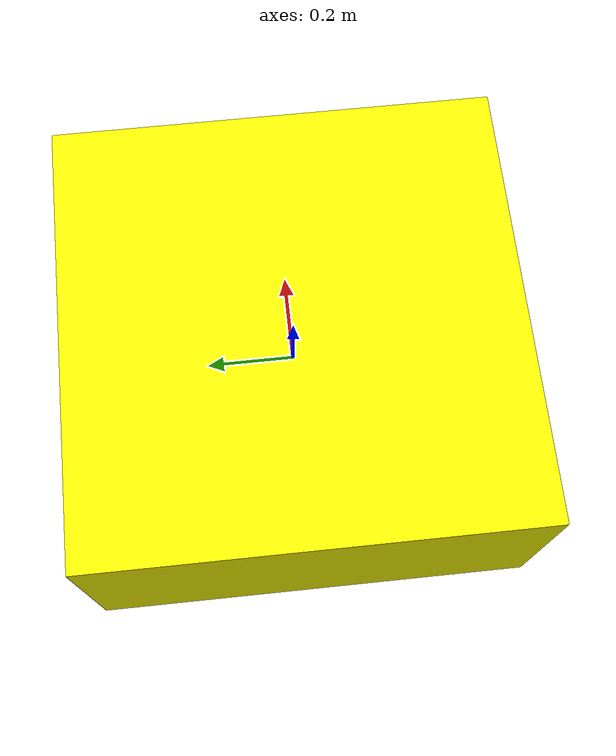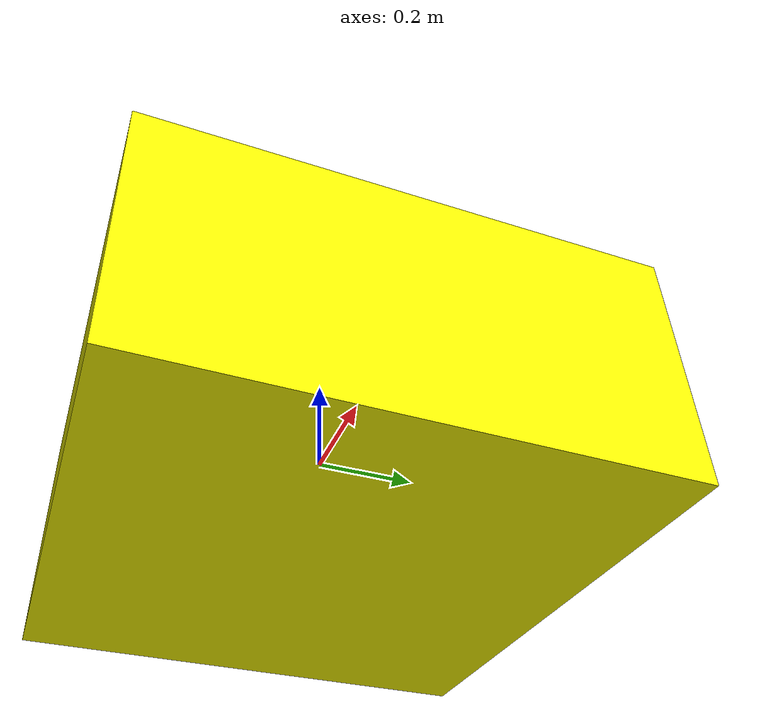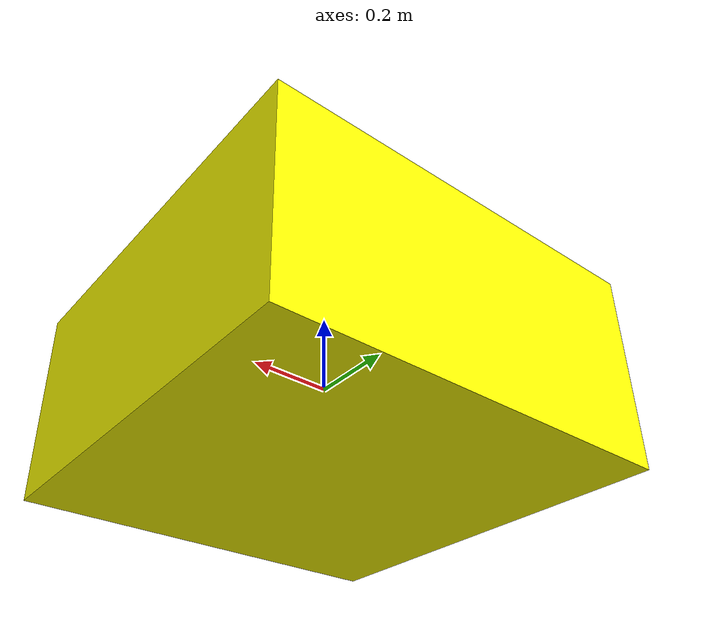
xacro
<?xml version="1.0"?>
<robot xmlns:xacro="http://ros.org/wiki/xacro"
       name="ur3e" >

  <!-- common stuff -->
  <xacro:include filename="$(find ur_e_description)/urdf/common.gazebo.xacro" />

  <!-- ur3e -->
  <xacro:include filename="$(find ur_e_description)/urdf/ur3e.urdf.xacro" />

  <!-- Include EGH Gripper -->
  <xacro:include filename="$(find ur_e_description)/urdf/egh_gripper.urdf.xacro" />

  <!-- arm -->
  <xacro:ur3e_robot prefix="" joint_limited="true"
    shoulder_pan_lower_limit="${-pi}" shoulder_pan_upper_limit="${pi}"
    shoulder_lift_lower_limit="${-pi}" shoulder_lift_upper_limit="${pi}"
    elbow_joint_lower_limit="${-pi}" elbow_joint_upper_limit="${pi}"
    wrist_1_lower_limit="${-pi}" wrist_1_upper_limit="${pi}"
    wrist_2_lower_limit="${-pi}" wrist_2_upper_limit="${pi}"
    wrist_3_lower_limit="${-pi}" wrist_3_upper_limit="${pi}"
  />

    <link name="world" >

    </link>

    <link name="ground_plane_box">
        <visual>
            <origin xyz="0 0 0" rpy="0 0 0"/>
            <geometry>
                <box size="1.0 1.0 0.5"/>
            </geometry>
            <material name="Red_green">
                <color rgba="1.0 1.0 0.0 1.0"/>
            </material>
        </visual>
        <collision>
            <origin xyz="0 0 0" rpy="0 0 0"/>
            <geometry>
                <box size="1.0 1.0 0.5"/>
            </geometry>
        </collision>
    </link>

    <joint name="ground_plane_box" type="fixed">
        <parent link="world" />
        <child link="ground_plane_box" />
        <origin xyz="0 0 0" rpy="0 0 0" />
    </joint>

    <gazebo reference="world">
      <material>Gazebo/Red</material>
      <turnGravityOff>false</turnGravityOff>
    </gazebo>

    <joint name="world_joint" type="fixed">
        <parent link="world" />
        <child link = "base_link" />
        <origin xyz="0.0 0.0 0.0" rpy="0.0 0.0 0.0" />
    </joint>

    <!-- Schunk EGH -->
    <xacro:egh_gripper prefix="egh_gripper" parent="tool0">
    </xacro:egh_gripper>

</robot>

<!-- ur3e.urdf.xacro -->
<robot xmlns:xacro="http://ros.org/wiki/xacro">

  <xacro:include filename="$(find ur_e_description)/urdf/ur.transmission.xacro" />
  <xacro:include filename="$(find ur_e_description)/urdf/ur.gazebo.xacro" />

   <xacro:macro name="cylinder_inertial" params="radius length mass *origin">
    <inertial>
      <mass value="${mass}" />
      <xacro:insert_block name="origin" />
      <inertia ixx="${0.0833333 * mass * (3 * radius * radius + length * length)}" ixy="0.0" ixz="0.0"
        iyy="${0.0833333 * mass * (3 * radius * radius + length * length)}" iyz="0.0"
        izz="${0.5 * mass * radius * radius}" />
    </inertial>
  </xacro:macro>

  <xacro:macro name="ur3e_robot" params="prefix joint_limited
    shoulder_pan_lower_limit:=${-pi}    shoulder_pan_upper_limit:=${pi}
    shoulder_lift_lower_limit:=${-pi}    shoulder_lift_upper_limit:=${pi}
    elbow_joint_lower_limit:=${-pi}    elbow_joint_upper_limit:=${pi}
    wrist_1_lower_limit:=${-pi}    wrist_1_upper_limit:=${pi}
    wrist_2_lower_limit:=${-pi}    wrist_2_upper_limit:=${pi}
    wrist_3_lower_limit:=${-pi}    wrist_3_upper_limit:=${pi}
    transmission_hw_interface:=hardware_interface/PositionJointInterface
    safety_limits:=false safety_pos_margin:=0.15
    safety_k_position:=20">

    <!-- Inertia parameters -->
    <xacro:property name="base_mass" value="2.0" />  <!-- This mass might be incorrect -->
    <xacro:property name="shoulder_mass" value="2.0" />
    <xacro:property name="upper_arm_mass" value="3.42" />
    <xacro:property name="forearm_mass" value="1.26" />
    <xacro:property name="wrist_1_mass" value="0.8" />
    <xacro:property name="wrist_2_mass" value="0.8" />
    <xacro:property name="wrist_3_mass" value="0.35" />

    <xacro:property name="shoulder_cog" value="0.0 -0.02 0.0" />
    <xacro:property name="upper_arm_cog" value="0.13 0.0 0.1157" />
    <xacro:property name="forearm_cog" value="0.05 0.0 0.0238" />
    <xacro:property name="wrist_1_cog" value="0.0 0.0 0.01" />
    <xacro:property name="wrist_2_cog" value="0.0 0.0 0.01" />
    <xacro:property name="wrist_3_cog" value="0.0 0.0 -0.02" />

    <!-- Kinematic model -->
    <!-- Properties from urcontrol.conf -->
    <xacro:property name="d1" value="0.152" />
    <xacro:property name="a2" value="-0.244" />
    <xacro:property name="a3" value="-0.213" />
    <xacro:property name="d4" value="0.104" />
    <xacro:property name="d5" value="0.085" />
    <xacro:property name="d6" value="0.092" />

    <!-- Arbitrary offsets for shoulder/elbow joints -->
    <xacro:property name="shoulder_offset" value="0.120" />  <!-- measured from model -->
    <xacro:property name="elbow_offset" value="-0.093" /> <!-- measured from model -->

    <!-- link lengths used in model -->
    <xacro:property name="shoulder_height" value="${d1}" />
    <xacro:property name="upper_arm_length" value="${-a2}" />
    <xacro:property name="forearm_length" value="${-a3}" />
    <xacro:property name="wrist_1_length" value="${d4}" />
    <xacro:property name="wrist_2_length" value="${d5}" />
    <xacro:property name="wrist_3_length" value="${d6}" />

    <link name="${prefix}base_link" >
      <visual>
        <geometry>
          <mesh filename="package://ur_e_description/meshes/ur3e/visual/base.dae"/>
        </geometry>
        <material name="LightGrey">
          <color rgba="0.7 0.7 0.7 1.0"/>
        </material>
      </visual>
      <collision>
        <geometry>
          <mesh filename="package://ur_e_description/meshes/ur3e/collision/base.stl"/>
        </geometry>
      </collision>
      <xacro:cylinder_inertial radius="0.075" length="0.038" mass="${base_mass}">
        <origin xyz="0.0 0.0 0.0" rpy="0 0 0" />
      </xacro:cylinder_inertial>
    </link>

    <joint name="${prefix}shoulder_pan_joint" type="revolute">
      <parent link="${prefix}base_link" />
      <child link = "${prefix}shoulder_link" />
      <origin xyz="0.0 0.0 ${shoulder_height}" rpy="0.0 0.0 0.0" />
      <axis xyz="0 0 1" />
      <xacro:unless value="${joint_limited}">
        <limit lower="${-2.0 * pi}" upper="${2.0 * pi}" effort="330.0" velocity="3.14"/>
        <xacro:if value="${safety_limits}">
          <safety_controller soft_lower_limit="${-2.0 * pi + safety_pos_margin}" soft_upper_limit="${2.0 * pi - safety_pos_margin}" k_position="${safety_k_position}" k_velocity="0.0"/>
        </xacro:if>
      </xacro:unless>
      <xacro:if value="${joint_limited}">
        <limit lower="${shoulder_pan_lower_limit}" upper="${shoulder_pan_upper_limit}" effort="330.0" velocity="3.14"/>
        <xacro:if value="${safety_limits}">
          <safety_controller soft_lower_limit="${shoulder_pan_lower_limit + safety_pos_margin}" soft_upper_limit="${shoulder_pan_upper_limit - safety_pos_margin}" k_position="${safety_k_position}" k_velocity="0.0"/>
        </xacro:if>
      </xacro:if>
      <dynamics damping="0.0" friction="0.0"/>
    </joint>

    <link name="${prefix}shoulder_link">
      <visual>
        <geometry>
          <mesh filename="package://ur_e_description/meshes/ur3e/visual/shoulder.dae"/>
        </geometry>
        <material name="LightGrey">
          <color rgba="0.7 0.7 0.7 1.0"/>
        </material>
      </visual>
      <collision>
        <geometry>
          <mesh filename="package://ur_e_description/meshes/ur3e/collision/shoulder.stl"/>
        </geometry>
      </collision>
      <xacro:cylinder_inertial radius="0.075" length="0.178" mass="${shoulder_mass}">
        <origin xyz="0.0 0.0 0.0" rpy="0 0 0" />
      </xacro:cylinder_inertial>
    </link>

    <joint name="${prefix}shoulder_lift_joint" type="revolute">
      <parent link="${prefix}shoulder_link" />
      <child link = "${prefix}upper_arm_link" />
      <origin xyz="0.0 ${shoulder_offset} 0.0" rpy="0.0 ${pi / 2.0} 0.0" />
      <axis xyz="0 1 0" />
      <xacro:unless value="${joint_limited}">
        <limit lower="${-2.0 * pi}" upper="${2.0 * pi}" effort="330.0" velocity="3.14"/>
        <xacro:if value="${safety_limits}">
          <safety_controller soft_lower_limit="${-2.0 * pi + safety_pos_margin}" soft_upper_limit="${2.0 * pi - safety_pos_margin}" k_position="${safety_k_position}" k_velocity="0.0"/>
        </xacro:if>
      </xacro:unless>
      <xacro:if value="${joint_limited}">
        <limit lower="${shoulder_lift_lower_limit}" upper="${shoulder_lift_upper_limit}" effort="330.0" velocity="3.14"/>
        <xacro:if value="${safety_limits}">
          <safety_controller soft_lower_limit="${shoulder_lift_lower_limit + safety_pos_margin}" soft_upper_limit="${shoulder_lift_upper_limit - safety_pos_margin}" k_position="${safety_k_position}" k_velocity="0.0"/>
        </xacro:if>
      </xacro:if>
      <dynamics damping="0.0" friction="0.0"/>
    </joint>

    <link name="${prefix}upper_arm_link">
      <visual>
        <geometry>
          <mesh filename="package://ur_e_description/meshes/ur3e/visual/upperarm.dae"/>
        </geometry>
        <material name="LightGrey">
          <color rgba="0.7 0.7 0.7 1.0"/>
        </material>
      </visual>
      <collision>
        <geometry>
          <mesh filename="package://ur_e_description/meshes/ur3e/collision/upperarm.stl"/>
        </geometry>
      </collision>
      <xacro:cylinder_inertial radius="0.075" length="${-a2}" mass="${upper_arm_mass}">
        <origin xyz="0.0 0.0 ${-a2/2.0}" rpy="0 0 0" />
      </xacro:cylinder_inertial>
    </link>

    <joint name="${prefix}elbow_joint" type="revolute">
      <parent link="${prefix}upper_arm_link" />
      <child link = "${prefix}forearm_link" />
      <origin xyz="0.0 ${elbow_offset} ${upper_arm_length}" rpy="0.0 0.0 0.0" />
      <axis xyz="0 1 0" />
      <xacro:unless value="${joint_limited}">
        <limit lower="${-pi}" upper="${pi}" effort="150.0" velocity="3.14"/>
        <xacro:if value="${safety_limits}">
          <safety_controller soft_lower_limit="${-2.0 * pi + safety_pos_margin}" soft_upper_limit="${2.0 * pi - safety_pos_margin}" k_position="${safety_k_position}" k_velocity="0.0"/>
        </xacro:if>
      </xacro:unless>
      <xacro:if value="${joint_limited}">
        <limit lower="${elbow_joint_lower_limit}" upper="${elbow_joint_upper_limit}" effort="150.0" velocity="3.14"/>
        <xacro:if value="${safety_limits}">
          <safety_controller soft_lower_limit="${elbow_joint_lower_limit + safety_pos_margin}" soft_upper_limit="${elbow_joint_upper_limit - safety_pos_margin}" k_position="${safety_k_position}" k_velocity="0.0"/>
        </xacro:if>
      </xacro:if>
      <dynamics damping="0.0" friction="0.0"/>
    </joint>

    <link name="${prefix}forearm_link">
      <visual>
         <geometry>
          <mesh filename="package://ur_e_description/meshes/ur3e/visual/forearm.dae"/>
        </geometry>
        <material name="LightGrey">
          <color rgba="0.7 0.7 0.7 1.0"/>
        </material>
      </visual>
      <collision>
        <geometry>
          <mesh filename="package://ur_e_description/meshes/ur3e/collision/forearm.stl"/>
        </geometry>
      </collision>
      <xacro:cylinder_inertial radius="0.075" length="${-a3}" mass="${forearm_mass}">
        <origin xyz="0.0 0.0 ${-a3/2.0}" rpy="0 0 0" />
      </xacro:cylinder_inertial>
    </link>

    <joint name="${prefix}wrist_1_joint" type="revolute">
      <parent link="${prefix}forearm_link" />
      <child link = "${prefix}wrist_1_link" />
      <origin xyz="0.0 0.0 ${forearm_length}" rpy="0.0 ${pi / 2.0} 0.0" />
      <axis xyz="0 1 0" />
      <xacro:unless value="${joint_limited}">
        <limit lower="${-2.0 * pi}" upper="${2.0 * pi}" effort="54.0" velocity="6.28"/>
        <xacro:if value="${safety_limits}">
          <safety_controller soft_lower_limit="${-2.0 * pi + safety_pos_margin}" soft_upper_limit="${2.0 * pi - safety_pos_margin}" k_position="${safety_k_position}" k_velocity="0.0"/>
        </xacro:if>
      </xacro:unless>
      <xacro:if value="${joint_limited}">
        <limit lower="${wrist_1_lower_limit}" upper="${wrist_1_upper_limit}" effort="54.0" velocity="6.28"/>
        <xacro:if value="${safety_limits}">
          <safety_controller soft_lower_limit="${wrist_1_lower_limit + safety_pos_margin}" soft_upper_limit="${wrist_1_upper_limit - safety_pos_margin}" k_position="${safety_k_position}" k_velocity="0.0"/>
        </xacro:if>
      </xacro:if>
      <dynamics damping="0.0" friction="0.0"/>
    </joint>

    <link name="${prefix}wrist_1_link">
      <visual>
        <geometry>
          <mesh filename="package://ur_e_description/meshes/ur3e/visual/wrist1.dae"/>
        </geometry>
        <material name="LightGrey">
          <color rgba="0.7 0.7 0.7 1.0"/>
        </material>
      </visual>
      <collision>
        <geometry>
          <mesh filename="package://ur_e_description/meshes/ur3e/collision/wrist1.stl"/>
        </geometry>
      </collision>
      <xacro:cylinder_inertial radius="0.075" length="0.12" mass="${wrist_1_mass}">
        <origin xyz="0.0 ${wrist_1_length} 0.0" rpy="0 0 0" />
      </xacro:cylinder_inertial>
    </link>

    <joint name="${prefix}wrist_2_joint" type="revolute">
      <parent link="${prefix}wrist_1_link" />
      <child link = "${prefix}wrist_2_link" />
      <origin xyz="0.0 ${wrist_1_length} 0.0" rpy="0.0 0.0 0.0" />
      <axis xyz="0 0 1" />
      <xacro:unless value="${joint_limited}">
        <limit lower="${-2.0 * pi}" upper="${2.0 * pi}" effort="54.0" velocity="6.28"/>
        <xacro:if value="${safety_limits}">
          <safety_controller soft_lower_limit="${-2.0 * pi + safety_pos_margin}" soft_upper_limit="${2.0 * pi - safety_pos_margin}" k_position="${safety_k_position}" k_velocity="0.0"/>
        </xacro:if>
      </xacro:unless>
      <xacro:if value="${joint_limited}">
        <limit lower="${wrist_2_lower_limit}" upper="${wrist_2_upper_limit}" effort="54.0" velocity="6.28"/>
        <xacro:if value="${safety_limits}">
          <safety_controller soft_lower_limit="${wrist_2_lower_limit + safety_pos_margin}" soft_upper_limit="${wrist_2_upper_limit - safety_pos_margin}" k_position="${safety_k_position}" k_velocity="0.0"/>
        </xacro:if>
      </xacro:if>
      <dynamics damping="0.0" friction="0.0"/>
    </joint>

    <link name="${prefix}wrist_2_link">
      <visual>
        <geometry>
          <mesh filename="package://ur_e_description/meshes/ur3e/visual/wrist2.dae"/>
        </geometry>
        <material name="LightGrey">
          <color rgba="0.7 0.7 0.7 1.0"/>
        </material>
      </visual>
      <collision>
        <geometry>
          <mesh filename="package://ur_e_description/meshes/ur3e/collision/wrist2.stl"/>
        </geometry>
      </collision>
      <xacro:cylinder_inertial radius="0.075" length="0.12" mass="${wrist_2_mass}">
        <origin xyz="0.0 0.0 ${wrist_2_length}" rpy="0 0 0" />
      </xacro:cylinder_inertial>
    </link>

    <joint name="${prefix}wrist_3_joint" type="revolute">
      <parent link="${prefix}wrist_2_link" />
      <child link = "${prefix}wrist_3_link" />
      <origin xyz="0.0 0.0 ${wrist_2_length}" rpy="0.0 0.0 0.0" />
      <axis xyz="0 1 0" />
      <xacro:unless value="${joint_limited}">
        <limit lower="${-2.0 * pi}" upper="${2.0 * pi}" effort="54.0" velocity="6.28"/>
        <xacro:if value="${safety_limits}">
          <safety_controller soft_lower_limit="${-2.0 * pi + safety_pos_margin}" soft_upper_limit="${2.0 * pi - safety_pos_margin}" k_position="${safety_k_position}" k_velocity="0.0"/>
        </xacro:if>
      </xacro:unless>
      <xacro:if value="${joint_limited}">
        <limit lower="${wrist_3_lower_limit}" upper="${wrist_3_upper_limit}" effort="54.0" velocity="6.28"/>
        <xacro:if value="${safety_limits}">
          <safety_controller soft_lower_limit="${wrist_3_lower_limit + safety_pos_margin}" soft_upper_limit="${wrist_3_upper_limit - safety_pos_margin}" k_position="${safety_k_position}" k_velocity="0.0"/>
        </xacro:if>
      </xacro:if>
      <dynamics damping="0.0" friction="0.0"/>
    </joint>

    <link name="${prefix}wrist_3_link">
      <visual>
        <geometry>
          <mesh filename="package://ur_e_description/meshes/ur3e/visual/wrist3.dae"/>
        </geometry>
        <material name="LightGrey">
          <color rgba="0.7 0.7 0.7 1.0"/>
        </material>
      </visual>
      <collision>
        <geometry>
          <mesh filename="package://ur_e_description/meshes/ur3e/collision/wrist3.stl"/>
        </geometry>
      </collision>
      <xacro:cylinder_inertial radius="0.032" length="0.042" mass="${wrist_3_mass}">
        <origin xyz="0.0 ${wrist_3_length - 0.021} 0.0" rpy="${pi/2} 0 0" />
      </xacro:cylinder_inertial>
    </link>

    <joint name="${prefix}ee_fixed_joint" type="fixed">
      <parent link="${prefix}wrist_3_link" />
      <child link = "${prefix}ee_link" />
      <origin xyz="0.0 ${wrist_3_length} 0.0" rpy="0.0 0.0 ${pi/2.0}" />
    </joint>

    <link name="${prefix}ee_link">
      <collision>
        <geometry>
          <box size="0.01 0.01 0.01"/>
        </geometry>
        <origin rpy="0 0 0" xyz="-0.01 0 0"/>
      </collision>
    </link>

    <xacro:ur_arm_transmission prefix="${prefix}" />
    <xacro:ur_arm_gazebo prefix="${prefix}" />

    <!-- ROS base_link to UR 'Base' Coordinates transform -->
    <link name="${prefix}base"/>
    <joint name="${prefix}base_link-base_fixed_joint" type="fixed">
      <origin xyz="0 0 0" rpy="0 0 ${-pi}"/>
      <parent link="${prefix}base_link"/>
      <child link="${prefix}base"/>
    </joint>

    <!-- Frame coincident with all-zeros TCP on UR controller -->
    <link name="${prefix}tool0"/>
    <joint name="${prefix}wrist_3_link-tool0_fixed_joint" type="fixed">
      <origin xyz="0 ${wrist_3_length} 0" rpy="${pi/-2.0} 0 0"/>
      <parent link="${prefix}wrist_3_link"/>
      <child link="${prefix}tool0"/>
    </joint>
 </xacro:macro>
</robot>

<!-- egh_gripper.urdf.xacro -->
<robot name="egh_gripper" xmlns:xacro="http://wiki.ros.org/xacro">

    <xacro:property name="M_PI" value="3.1415926535897931" />

    <xacro:macro name="egh_gripper" params="prefix parent">

        <joint name="${prefix}_base_joint" type="fixed">
            <origin xyz="0.0 0.0 0.0" rpy="0 ${pi} 0"/>
            <parent link="${parent}"/>
            <child link="${prefix}_base_link"/>
        </joint>

        <!-- BASE LINK -->
        <link name="${prefix}_base_link">
            <inertial>
                <mass value="0.25" />
                <origin xyz="0 0 0" />
                <inertia  ixx="1.0" ixy="0.0"  ixz="0.0"  iyy="1.0"  iyz="0.0"  izz="1.0" />
            </inertial>

            <visual>
                <origin xyz="0.0 0.0 0.0" rpy="0.0 0.0 0.0" />
                <geometry>
                    <mesh filename="package://ur_robot/meshes/base_link.STL" scale="1 1 1"/>
                </geometry>
                <material name="grey">
                <color rgba="0.5 0.5 0.5 1"/>
                </material>
            </visual>

            <collision>
                <origin xyz="0.0 0 0" rpy="0 0 0" />
                <geometry>
                <!--box size="0.146 0.05 0.0735"/-->
                    <mesh filename="package://ur_robot/meshes/base_link.STL" scale="1 1 1"/>
                </geometry>
            </collision>
        </link>

        <gazebo reference="${prefix}_base_link">
            <material>Gazebo/Grey</material>
            <turnGravityOff>false</turnGravityOff>
        </gazebo>

        <!-- FINGER LEFT -->

        <joint name="${prefix}_finger_left_joint" type="prismatic">
            <limit lower="-0.019" upper="0.0" effort="100.0" velocity="0.0525"/>
            <axis xyz="0 0 -1"/>
            <origin xyz="0 -0.052113 -0.0875" rpy="1.5708 0.0 0.0" />
            <parent link="${prefix}_base_link"/>
            <child link="${prefix}_left_finger" />
            <dynamics friction="100" damping="100" />
        </joint>

        <transmission name="${prefix}_base_trans_left">
            <type>transmission_interface/SimpleTransmission</type>
            <actuator name="${prefix}_base_motor_left">
                <mechanicalReduction>1</mechanicalReduction>
                <motorTorqueConstant>1</motorTorqueConstant>
            </actuator>
            <joint name="${prefix}_finger_left_joint" >
                <hardwareInterface>hardware_interface/PositionJointInterface</hardwareInterface>
            </joint>
        </transmission>

        <link name="${prefix}_left_finger">
            <inertial>
                <mass value="0.1" />
                <origin xyz="0 0 0" />
            <inertia ixx="1.0" ixy="0.0" ixz="0.0"
                    iyy="1.0" iyz="0.0"
                    izz="1.0" />
            </inertial>

            <visual>
                <origin xyz="0 0 0" rpy="0 0 0" />
                <geometry>
                    <mesh filename="package://ur_robot/meshes/Gripper.STL" scale="1.0 1.0 1.0"/>
                </geometry>
            </visual>

            <collision>
                <origin xyz="0 0 0" rpy="0 0 0" />
                <geometry>
                    <mesh filename="package://ur_robot/meshes/Gripper.STL" scale="1.0 1.0 1.0"/>
                </geometry>
            </collision>
            <contact_coefficients kd="1.0" kp="1000.0" mu="0"/>
        </link>

        <gazebo reference="${prefix}_left_finger">
            <material>Gazebo/Blue</material>
            <turnGravityOff>false</turnGravityOff>
        </gazebo>

        <!-- FINGER RIGHT -->
        <joint name="${prefix}_finger_right_joint" type="prismatic">
            <limit lower="0.0" upper="0.019" effort="100.0" velocity="0.0525"/>
            <axis xyz="0 0 -1"/>
            <origin xyz="0 0.052113 -0.0875" rpy="1.5708 0 0" />
            <parent link="${prefix}_base_link"/>
            <child link="${prefix}_right_finger" />
            <dynamics friction="100" damping="100" />
            <mimic joint="${prefix}_finger_left_joint" multiplier="1.0" offset="0" />
        </joint>

        <!--
            The transmission is not defined cause the right finger is mirroring
            the left finger using mimic plugin
        -->

        <xacro:macro name="mimic_joint_plugin_gazebo" params="parent_joint mimic_joint has_pid:=false multiplier:=1.0 offset:=0 sensitiveness:=0.0 max_effort:=200.0 robot_namespace:=''">
            <gazebo>
                <plugin name="${mimic_joint}_mimic_joint_plugin" filename="libroboticsgroup_gazebo_mimic_joint_plugin_new.so">
                    <joint>${parent_joint}</joint>
                    <mimicJoint>${mimic_joint}</mimicJoint>
                    <xacro:if value="${has_pid}">
                    <hasPID />
                    </xacro:if>
                    <multiplier>${multiplier}</multiplier>
                    <offset>${offset}</offset>
                    <sensitiveness>${sensitiveness}</sensitiveness>
                    <maxEffort>${max_effort}</maxEffort>
                    <xacro:unless value="${robot_namespace == ''}">
                        <robotNamespace>($robot_namespace)</robotNamespace>
                    </xacro:unless>
                </plugin>
            </gazebo>
        </xacro:macro>

        <xacro:mimic_joint_plugin_gazebo parent_joint="${prefix}_finger_left_joint"
        mimic_joint="${prefix}_finger_right_joint" has_pid="false" multiplier="1.0"
        max_effort="200.0" />

        <link name="${prefix}_right_finger">
            <inertial>
            <mass value="0.1" />
                <origin xyz="0 0 0" rpy="0 0 0"/>
                <inertia ixx="1.0" ixy="0.0" ixz="0.0"
                        iyy="1.0" iyz="0.0"
                        izz="1.0" />
            </inertial>

            <visual>
                <origin xyz="0 0 0" rpy="0 0 0" />
                <geometry>
                    <mesh filename="package://ur_robot/meshes/Gripper_2.STL" scale="1.0 1.0 1.0"/>
                </geometry>
            </visual>

            <collision>
                <origin xyz="0 0 0" rpy="0 0 0" />
                <geometry>
                    <mesh filename="package://ur_robot/meshes/Gripper_2.STL" scale="1.0 1.0 1.0"/>
                </geometry>
            </collision>
            <contact_coefficients kd="1.0" kp="1000.0" mu="0"/>
        </link>

        <gazebo reference="${prefix}_right_finger">
            <material>Gazebo/Blue</material>
            <turnGravityOff>false</turnGravityOff>
        </gazebo>

        <gazebo>
            <plugin name="gazebo_grasp_fix" filename="libgazebo_grasp_fix.so">
                <arm>
                    <arm_name>my_gripper</arm_name>
                    <palm_link>wrist_3_link</palm_link>
                    <gripper_link> egh_gripper_left_finger </gripper_link>
                    <gripper_link> egh_gripper_right_finger </gripper_link>
                </arm>
                <forces_angle_tolerance>100</forces_angle_tolerance>
                <update_rate>10</update_rate>
                <grip_count_threshold>3</grip_count_threshold>
                <max_grip_count>10</max_grip_count>
                <release_tolerance>0.001</release_tolerance>
                <disable_collisions_on_attach>false</disable_collisions_on_attach>
                <contact_topic>__default_topic__</contact_topic>
            </plugin>
        </gazebo>

    </xacro:macro>

</robot>
